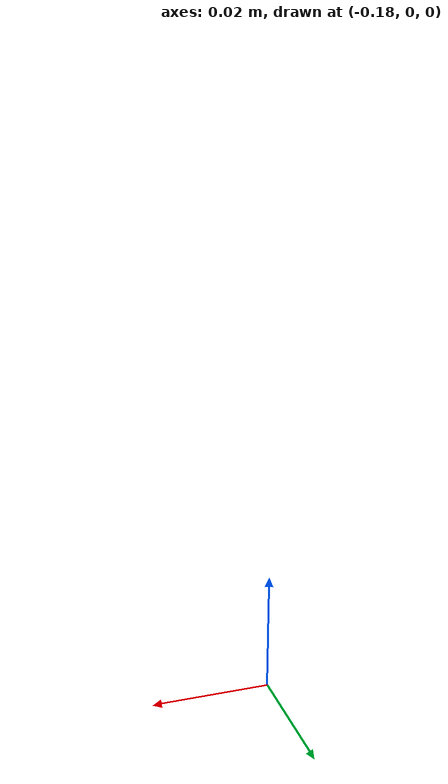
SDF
<?xml version='1.0'?>
<sdf version='1.6'>
  <model name='empty_floor_20_20'>
    <pose frame=''>0.071578 0.011736 0 0 -0 0</pose>
    <link name='Floor'>
      <collision name='Floor'>
        <geometry>
          <box>
            <size>1524.25 1169.5 0.1</size>
          </box>
        </geometry>
        <surface>
        <friction>
          <ode>
            <mu>5</mu>
            <mu2>5</mu2>
          </ode>
        </friction>
        </surface>
        <pose frame=''>0 0 0.05 0 -0 0</pose>
      </collision>
      <visual name='Floor'>
        <pose frame=''>0 0 0.05 0 -0 0</pose>
        <geometry>
          <box>
            <size>0 0 0.1</size>
          </box>
        </geometry>
        <material>
          <script>
            <uri>file://media/materials/scripts/gazebo.material</uri>
            <name>Gazebo/White</name>
          </script>
          <ambient>0 0 0 0</ambient>
        </material>
        <meta>
          <layer>1</layer>
        </meta>
      </visual>
      <pose frame=''>-0.250009 -2e-06 0 0 -0 0</pose>
    </link>  <link name='Wall_10'>
      <collision name='Wall_10_Collision'>
        <geometry>
          <box>
            <size>19.9552 0.15 2.5</size>
          </box>
        </geometry>
        <pose frame=''>0 0 1.25 0 -0 0</pose>
      </collision>
      <pose frame=''>0.035696 9.80568 0 0 -0 0.011396</pose>
    </link>
    <link name='Wall_11'>
      <collision name='Wall_11_Collision'>
        <geometry>
          <box>
            <size>19.8021 0.15 2.5</size>
          </box>
        </geometry>
        <pose frame=''>0 0 1.25 0 -0 0</pose>
      </collision>
      <pose frame=''>9.95352 0.05201 0 0 -0 -1.56918</pose>
    </link>
    <link name='Wall_12'>
      <collision name='Wall_12_Collision'>
        <geometry>
          <box>
            <size>20.0484 0.15 2.5</size>
          </box>
        </geometry>
        <pose frame=''>0 0 1.25 0 -0 0</pose>
      </collision>
      <pose frame=''>-0.020016 -9.84644 0 0 -0 -3.13432</pose>
    </link>
    <link name='Wall_9'>
      <collision name='Wall_9_Collision'>
        <geometry>
          <box>
            <size>19.7619 0.15 2.5</size>
          </box>
        </geometry>
        <pose frame=''>0 0 1.25 0 -0 0</pose>
      </collision>
      <pose frame=''>-9.91762 -0.092886 0 0 -0 1.56556</pose>
    </link>
    <static>1</static>
  </model>
</sdf>
